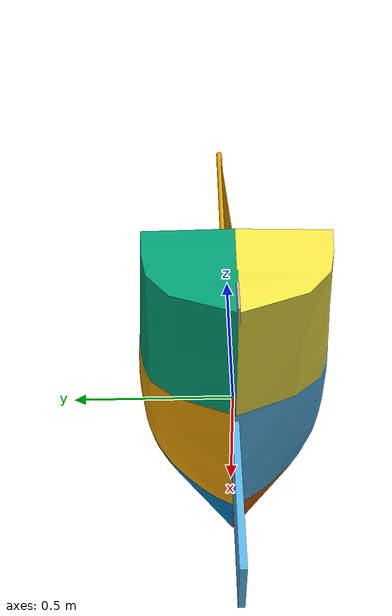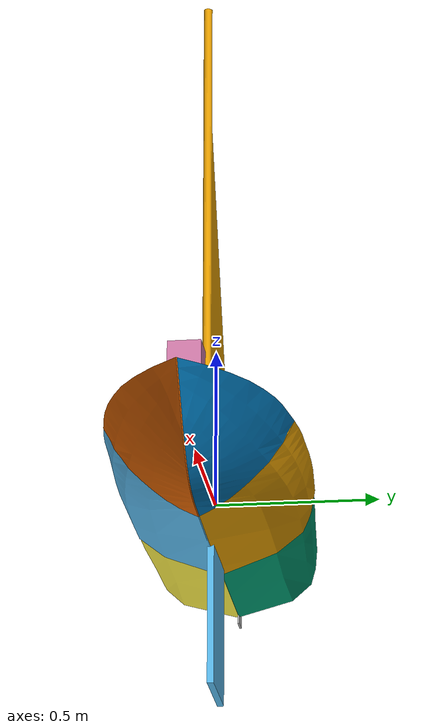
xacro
<?xml version="1.0"?>

<robot name="sailboat" xmlns:xacro="http://www.ros.org/wiki/xacro">

    <xacro:arg name="windType" default="global" />
    <xacro:arg name="waterType" default="global" />
    <xacro:property name="windType" value="$(arg windType)" />
    <xacro:property name="waterType" value="$(arg waterType)" />

    <xacro:property name="windType" value="global"/>
    <xacro:include filename="$(find usv_sim)/xacro/boat_subdivided4.xacro" />

    <xacro:rudder_xacro/>

    <!-- Defining sail model -->

    <link name="sail">
		<inertial>
		    	<origin rpy="0 0 0" xyz="-0.3 0 0.4"/>
			<mass value="1" />
			<inertia
			  ixx="0.4708"
			  ixy="0.0"
			  iyy="0.5208"
			  ixz="0.0"
			  iyz="0.0"
			  izz="0.0508"/>
		</inertial>

	    <collision name="collision">
            <geometry>
              <mesh filename="package://usv_sim/meshes/simpleHull3/sail.dae" scale="0.5 0.5 0.5"/>
            </geometry>
            <origin rpy="0 0 0" xyz="0 0 0"/>
	    </collision>

	    <visual name="visual">

            <geometry>

              <mesh filename="package://usv_sim/meshes/simpleHull3/sail.dae" scale="0.5 0.5 0.5"/>
            </geometry>
            <origin rpy="0 0 0" xyz="0 0 0"/>
	    </visual>
    </link>

    <joint name="sail_joint" type="revolute">
        <parent link="base_link"/>
        <child link="sail"/>
        <origin rpy="0 0 0" xyz="0.2 0 0.1"/>
        <dynamics damping="2.0"/>
        <axis xyz="0 0 1"/>
        <limit effort="1000000" velocity="700" lower="-${PI/2}" upper="${PI/2}" />
    </joint>

    <link name="keel">
	<inertial>
		<mass value="30" />
		<inertia
		  ixx="0.4708"
		  ixy="0.0"
		  iyy="0.5208"
		  ixz="0.0"
		  iyz="0.0"
		  izz="0.0508"/>
	</inertial>
	<collision name="collision">
		<geometry>
			<box size="0.25 0.02 0.5" />
		</geometry>
		<origin rpy="0 0 0" xyz="0 0 0"/>

	</collision>

	<visual name="visual">
		<geometry>
			<mesh filename="package://usv_sim/meshes/simpleHull3/box.dae" scale="0.25 0.02 0.5"/>
		</geometry>
		<origin rpy="0 0 0" xyz="0 0 0"/>
	</visual>
</link>

    <joint name="keel_joint" type="revolute">
        <parent link="base_link"/>
        <child link="keel"/>
        <origin rpy="0 0 0" xyz="0 0 -0.35"/>
        <dynamics damping="1.0"/>
        <axis xyz="0 0 1"/>
        <limit effort="30" velocity="5" lower="0" upper="0" />
    </joint>

    <!-- Plugin list -->
  <gazebo>

	<plugin name="usv_sail_plugin" filename="libfoil_dynamics_plugin.so">
		<link_type>sail</link_type>
		<link_name>sail</link_name>
		<joint_name>sail_joint</joint_name>
		<cla>8.0</cla>
		<cda>4.0</cda>
		<cp>0 0 0</cp>
		<area>1.44</area>
		<fluid_density>1.2041</fluid_density>
		<forward>1 0 0</forward>
		<upward>0 -1 0</upward>
		<fluidVelocity>${windType}</fluidVelocity>
      </plugin>

      <plugin name="usv_sail_plugin" filename="libfoil_dynamics_plugin.so">
		  <link_type>keel</link_type>
		  <link_name>keel</link_name>
		  <cla>8.0</cla>
		  <cda>4.0</cda>
		  <cp>0 0 0</cp>
		  <area>1.0</area>
		  <fluid_density>1000</fluid_density>
		  <forward>1 0 0</forward>
		  <upward>0 1 0</upward>
		  <fluidVelocity>${waterType}</fluidVelocity>
    </plugin>

    <plugin name="usv_sail_plugin" filename="libfoil_dynamics_plugin.so">
		<link_type>rudder</link_type>
		<link_name>rudder</link_name>
		<cla>1.5</cla>
		<cda>1.0</cda>
		<cp>0 0 0</cp>
		<area>1</area>
		<fluid_density>1000</fluid_density>
		<forward>1 0 0</forward>
		<upward>0 1 0</upward>
		<fluidVelocity>${waterType}</fluidVelocity>
      </plugin>

      <plugin name="freefloating_gazebo_control" filename="libfreefloating_gazebo_control.so">
          <switchService>switch</switchService>
          <updateRate>100</updateRate>
          <link>base_link</link>
      </plugin>

  </gazebo>

</robot>

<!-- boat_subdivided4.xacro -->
<xacro xmlns:xacro="http://www.ros.org/wiki/xacro">

    <xacro:property name="PI" value="3.1415926535897931"/>

    <!-- Body properties -->
    <xacro:property name="front_body_mass" value="5"/>
    <xacro:property name="back_body_mass" value="5"/>
    <xacro:property name="middle_body_mass" value="5"/>
    <xacro:property name="rear_body_mass" value="5"/>
    <xacro:property name="front_body_mass" value="2"/>
    <xacro:property name="back_water_displaced_mass" value="40"/>
    <xacro:property name="middle_water_displaced_mass" value="40"/>
    <xacro:property name="front_water_displaced_mass" value="25"/>
    <xacro:property name="scale" value="0.3"/>
    <xacro:property name="bl1" value=".1" />
    <xacro:property name="bl2" value=".1" />
    <xacro:arg name="windType" default="global" />
    <xacro:arg name="waterType" default="global" />
    <xacro:property name="windType" value="$(arg windType)" />
    <xacro:property name="waterType" value="$(arg waterType)" />

    <link name="base_link">
        <visual>
          <origin rpy="0 0 0" xyz="0 0 0"/>
          <geometry>
            <mesh filename="package://usv_sim/meshes/simpleHull3/base_link.dae" scale="${scale} ${scale} ${scale}"/>
          </geometry>
        </visual>
        <collision>
          <origin rpy="0 0 0" xyz="0 0 0"/>
          <geometry>
            <mesh filename="package://usv_sim/meshes/simpleHull3/base_link.dae" scale="${scale} ${scale} ${scale}"/>
          </geometry>
        </collision>

        <inertial>
            <origin rpy="0 0 0" xyz="${0.35*scale} ${0.44*scale} ${-0.2*scale}"/>
          <mass value="${middle_body_mass}"/>
          <inertia ixx="0.1" ixy="0.0" ixz="0.0" iyy="1.4" iyz="0.0" izz="1.4"/>
        </inertial>
        <buoyancy>
			<compensation>${middle_water_displaced_mass/middle_body_mass}</compensation>
			<origin xyz="${0.35*scale} ${0.44*scale} ${-0.15*scale}"/>
			<limit radius="0.1"/>
			<damping rpy="20 20 20" xyz="20 40 50"/>
         	<windVelocity>${windType}</windVelocity>
			<frontal_area>0.0</frontal_area>
			<lateral_area>0.06</lateral_area>
			<lateral_length>1.2</lateral_length>
	  		<waterVelocity>${waterType}</waterVelocity>
        </buoyancy>
    </link>

    <link name="center_r_link">
    	<visual>
          <origin rpy="0 0 0"  xyz="0 0 ${0*scale}"/>
          <geometry>
            <mesh filename="package://usv_sim/meshes/simpleHull3/centerRight.dae" scale="${scale} ${scale} ${scale}"/>
          </geometry>
        </visual>

        <collision>
          <origin rpy="0 0 0"  xyz="0 0 ${0*scale}"/>
          <geometry>
           	<mesh filename="package://usv_sim/meshes/simpleHull3/centerRight.dae" scale="${scale} ${scale} ${scale}"/>
          </geometry>
        </collision>

        <inertial>
            <origin rpy="0 0 0" xyz="${0.35*scale} ${-0.44*scale} ${-0.2*scale}"/>
          <mass value="${middle_body_mass}"/>
          <inertia ixx="0.1" ixy="0.0" ixz="0.0" iyy="1.4" iyz="0.0" izz="1.4"/>
        </inertial>
        <buoyancy>
          <compensation>${middle_water_displaced_mass/middle_body_mass}</compensation>
          <origin xyz="${0.35*scale} ${-0.44*scale} ${-0.15*scale}"/>
          <limit radius="0.1"/>
          <damping rpy="20 20 20" xyz="20 40 50"/>
			<windVelocity>${windType}</windVelocity>
			<frontal_area>0.0</frontal_area>
			<lateral_area>0.06</lateral_area>
			<lateral_length>1.2</lateral_length>
	  <waterVelocity>${waterType}</waterVelocity>
        </buoyancy>
    </link>

    <joint name="center_r_joint" type="revolute">
        <parent link="base_link"/>
        <child link="center_r_link"/>
        <origin rpy="0 0 0" xyz="0 0 0"/>
	<limit effort="50" velocity="5" lower="0" upper="0" />
            <dynamics damping="1.0"/>
            <axis xyz="1 0 0"/>
    </joint>

    <link name="back_l_link">
        <visual>
          <origin rpy="0 0 0"  xyz="0 0 0"/>
          <geometry>
           	<mesh filename="package://usv_sim/meshes/simpleHull3/backLeft.dae" scale="${scale} ${scale} ${scale}"/>
          </geometry>
        </visual>
        <collision>
          <origin rpy="0 0 0"  xyz="0 0 0"/>
          <geometry>
           	<mesh filename="package://usv_sim/meshes/simpleHull3/backLeft.dae" scale="${scale} ${scale} ${scale}"/>
          </geometry>
        </collision>

        <inertial>
            <origin rpy="0 0 0" xyz="${-0.6*scale} 0 ${-0.2*scale}"/>
          <mass value="${back_body_mass}"/>
          <inertia ixx="0.1" ixy="0.0" ixz="0.0" iyy="1.4" iyz="0.0" izz="1.4"/>
        </inertial>
        <buoyancy>
			<compensation>${back_water_displaced_mass/back_body_mass}</compensation>
			<origin xyz="${-0.6*scale} 0 ${-0.15*scale}"/>
			<limit radius="0.1"/>
			<damping rpy="20 20 20" xyz="20 40 50"/>
			<windVelocity>${windType}</windVelocity>
			<frontal_area>0.04</frontal_area>
			<lateral_area>0.06</lateral_area>
			<lateral_length>1.2</lateral_length>
	  		<waterVelocity>${waterType}</waterVelocity>
        </buoyancy>
    </link>

    <joint name="back_l_joint" type="revolute">
        <parent link="base_link"/>
        <child link="back_l_link"/>
        <origin rpy="0 0 0" xyz="${-0.5*scale} ${0.39*scale} 0"/>
	<limit effort="50" velocity="5" lower="0" upper="0" />
            <dynamics damping="1.0"/>
            <axis xyz="1 0 0"/>
    </joint>

    <link name="back_r_link">
    	<visual>
          <origin rpy="0 0 0"  xyz="0 0 0"/>
          <geometry>
           	<mesh filename="package://usv_sim/meshes/simpleHull3/backRight.dae" scale="${scale} ${scale} ${scale}"/>
          </geometry>
    	</visual>
        <collision>
          <origin rpy="0 0 0"  xyz="0 0 0"/>
          <geometry>
           	<mesh filename="package://usv_sim/meshes/simpleHull3/backRight.dae" scale="${scale} ${scale} ${scale}"/>
          </geometry>
        </collision>

        <inertial>
            <origin rpy="0 0 0" xyz="${-0.6*scale} 0 ${-0.2*scale}"/>
          <mass value="${back_body_mass}"/>
          <inertia ixx="0.1" ixy="0.0" ixz="0.0" iyy="1.4" iyz="0.0" izz="1.4"/>
        </inertial>
        <buoyancy>
          	<compensation>${back_water_displaced_mass/back_body_mass}</compensation>
          	<origin xyz="${-0.6*scale} 0 ${-0.15*scale}"/>
          	<limit radius="0.1"/>
          	<damping rpy="20 20 20" xyz="20 40 50"/>
          	<windVelocity>${windType}</windVelocity>
			<frontal_area>0.04</frontal_area>
			<lateral_area>0.06</lateral_area>
			<lateral_length>1.2</lateral_length>
	  		<waterVelocity>${waterType}</waterVelocity>
        </buoyancy>
    </link>

    <joint name="back_r_joint" type="revolute">
        <parent link="base_link"/>
        <child link="back_r_link"/>
        <origin rpy="0 0 0" xyz="${-0.5*scale} ${-0.39*scale} 0"/>
	<limit effort="50" velocity="5" lower="0" upper="0" />
            <dynamics damping="1.0"/>
            <axis xyz="1 0 0"/>
    </joint>

    <link name="front_l_link">
    	<visual>
    	<origin rpy="0 0 0"  xyz="0 0 0"/>
          <geometry>
           	<mesh filename="package://usv_sim/meshes/simpleHull3/frontLeft.dae" scale="${scale} ${scale} ${scale}"/>
          </geometry>
    	</visual>
        <collision>
          <origin rpy="0 0 0"  xyz="0 0 0"/>
          <geometry>
           	<mesh filename="package://usv_sim/meshes/simpleHull3/frontLeft.dae" scale="${scale} ${scale} ${scale}"/>
          </geometry>
        </collision>

        <inertial>
            <origin rpy="0 0 0" xyz="${0.4*scale} 0 ${-0.1*scale}"/>
          <mass value="${front_body_mass}"/>
          <inertia ixx="0.1" ixy="0.0" ixz="0.0" iyy="1.4" iyz="0.0" izz="1.4"/>
        </inertial>
        <buoyancy>
          	<compensation>${front_water_displaced_mass/front_body_mass}</compensation>
          	<origin xyz="${0.4*scale} 0 ${-0.05*scale}"/>
          	<limit radius="0.1"/>
          	<damping rpy="20 20 20" xyz="20 40 50"/>
          	<windVelocity>${windType}</windVelocity>
			<frontal_area>0.04</frontal_area>
			<lateral_area>0.06</lateral_area>
			<lateral_length>1.2</lateral_length>
	  		<waterVelocity>${waterType}</waterVelocity>
        </buoyancy>
    </link>

    <joint name="front_l_joint" type="revolute">
        <parent link="base_link"/>
        <child link="front_l_link"/>
        <origin rpy="0 0 0" xyz="${1.3*scale} ${0.2*scale} 0"/>
	<limit effort="50" velocity="5" lower="0" upper="0" />
            <dynamics damping="1.0"/>
            <axis xyz="1 0 0"/>
    </joint>

    <link name="front_r_link">
    	<visual>
    		<origin rpy="0 0 0"  xyz="0 0 0"/>
          <geometry>
           	<mesh filename="package://usv_sim/meshes/simpleHull3/frontRight.dae" scale="${scale} ${scale} ${scale}"/>
          </geometry>
        </visual>
        <collision>
          <origin rpy="0 0 0"  xyz="${0*scale} ${0*scale} 0"/>
          <geometry>
           	<mesh filename="package://usv_sim/meshes/simpleHull3/frontRight.dae" scale="${scale} ${scale} ${scale}"/>
          </geometry>
        </collision>

        <inertial>
            <origin rpy="0 0 0" xyz="${0.4*scale} 0 ${-0.1*scale}"/>
          <mass value="${front_body_mass}"/>
          <inertia ixx="0.1" ixy="0.0" ixz="0.0" iyy="1.4" iyz="0.0" izz="1.4"/>
        </inertial>
        <buoyancy>
          <compensation>${front_water_displaced_mass/front_body_mass}</compensation>
          <origin xyz="${0.4*scale} 0 ${-0.05*scale}"/>
          <limit radius="0.1"/>
          <damping rpy="20 20 20" xyz="20 40 50"/>
          <windVelocity>${windType}</windVelocity>
	  <waterVelocity>${waterType}</waterVelocity>
        </buoyancy>
    </link>

    <joint name="front_r_joint" type="revolute">
        <parent link="base_link"/>
        <child link="front_r_link"/>
        <origin rpy="0 0 0" xyz="${1.3*scale} ${-0.2*scale} 0"/>
	<limit effort="50" velocity="5" lower="0" upper="0" />
            <dynamics damping="1.0"/>
            <axis xyz="1 0 0"/>
    </joint>

    <!-- Thruster link -->
    <xacro:macro name="thruster_link" params="name xyz rpy rotationAxis effort:=50 velocity:=5 lowerLimit upperLimit parentLink:=back_r_link">
        <joint name="${name}_joint" type="revolute">
            <parent link="${parentLink}"/>
            <child link="${name}"/>
            <origin rpy="${rpy}" xyz="${xyz}"/>
            <dynamics damping="10.0"/>
            <axis xyz="${rotationAxis}"/>
            <limit effort="${effort}" velocity="${velocity}" lower="${lowerLimit}" upper="${upperLimit}" />
        </joint>

        <link name="${name}">
            <buoyancy>
				<compensation>0.8</compensation>
	        	<waterVelocity>${waterType}</waterVelocity>
	    	</buoyancy>
	    	<collision>
          		<origin xyz="${-0.15*scale} 0 ${0*scale}" rpy="0 0 0"/>
          		<geometry>
          		    <mesh filename="package://usv_sim/meshes/simpleHull3/thruster.dae" scale="${scale} ${scale} ${scale}"/>
          		</geometry>
        	</collision>

            <visual name="${name}">
                <origin xyz="${-0.15*scale} 0 ${0*scale}" rpy="0 0 0" />
                <geometry>
                    <mesh filename="package://usv_sim/meshes/simpleHull3/thruster.dae" scale="${scale} ${scale} ${scale}"/>
                </geometry>
                <material name="black">
                    <color rgba="255 255 255 1"/>
                </material>
            </visual>

            <inertial>
                <mass value="5"/>
                <origin xyz="${-0.2*scale} 0 ${0.3*scale}" rpy="0 0 0" />
                <inertia
                    ixx=".1"
                    ixy="0.0"
                    ixz="0.0"
                    iyy=".1"
                    iyz="0.0"
                    izz=".1"/>
            </inertial>
        </link>

        <gazebo reference="${name}">
            <material>Gazebo/Black</material>
        </gazebo>
    </xacro:macro>

    <xacro:macro name="thruster_dummy_link" params="name xyz rpy">
        <joint name="${name}" type="fixed">
            <parent link="base_link"/>
            <child link="${name}"/>
            <origin rpy="${rpy}" xyz="${xyz}"/>
        </joint>
        <link name="${name}"/>
    </xacro:macro>

    <!-- Thruster link -->
    <xacro:macro name="airthruster_link" params="name xyz rpy rotationAxis effort:=100 velocity:=20 lowerLimit upperLimit parentLink:=back_r_link">
        <joint name="${name}_joint" type="revolute">
            <parent link="${parentLink}"/>
            <child link="${name}"/>
            <origin rpy="${rpy}" xyz="${xyz}"/>
            <dynamics damping="10.0"/>
            <axis xyz="${rotationAxis}"/>
            <limit effort="${effort}" velocity="${velocity}" lower="${lowerLimit}" upper="${upperLimit}" />
        </joint>

        <link name="${name}">
            <buoyancy>
				<compensation>1.0</compensation>
	        	<waterVelocity>${waterType}</waterVelocity>
	    	</buoyancy>
	    	<collision>
          		<origin xyz="0 0 0" rpy="0 0 0"/>
          		<geometry>
          			<box size="${bl1} ${bl1} ${bl2}" />
          		</geometry>
        	</collision>

            <visual name="${name}">
                <origin xyz="0 0 0" rpy="0 0 0" />
                <geometry>
                    	<mesh filename="package://usv_sim/meshes/simpleHull3/airPropeller.dae" scale="${scale} ${scale} ${scale}"/>
                </geometry>
            </visual>

            <inertial>
                <mass value=".1"/>
                <inertia
                    ixx=".1"
                    ixy="0.0"
                    ixz="0.0"
                    iyy=".1"
                    iyz="0.0"
                    izz=".1"/>
            </inertial>
        </link>

        <gazebo reference="${name}">
            <material>Gazebo/Black</material>
        </gazebo>
    </xacro:macro>

    <xacro:macro name="thruster_dummy_link" params="name xyz rpy">
        <joint name="${name}" type="fixed">
            <parent link="base_link"/>
            <child link="${name}"/>
            <origin rpy="${rpy}" xyz="${xyz}"/>
        </joint>
        <link name="${name}"/>
    </xacro:macro>

    <!-- Rudder link -->
    <xacro:macro name="rudder_xacro">
        <link name="rudder">
            <inertial>
                <mass value="1" />
                <inertia
                  ixx="0.05"
                  ixy="0.0"
                  iyy="0.05"
                  ixz="0.0"
                  iyz="0.0"
                  izz="0.005"/>
            </inertial>

            <collision name="collision">
                <geometry>
                  <box size="${0.2*scale} ${0.02*scale} ${0.3*scale}" />
                </geometry>
                <origin rpy="0 0 0" xyz="${-0.1*scale} 0 0"/>
            </collision>

            <visual name="visual">
                <geometry>

                  <mesh filename="package://usv_sim/meshes/simpleHull3/box.dae" scale="${0.2*scale} ${0.02*scale} ${0.3*scale}"/>

                </geometry>
                <origin rpy="0 0 0" xyz="${-0.1*scale} 0 0"/>

            </visual>

        </link>

        <joint name="rudder_joint" type="revolute">
            <parent link="back_r_link"/>
            <child link="rudder"/>
            <origin rpy="0 0 0" xyz="${-1.4*scale} ${0.39*scale} ${-0.5*scale}"/>
            <dynamics damping="1.0"/>
            <axis xyz="0 0 1"/>
            <limit effort="100" velocity="5" lower="-${PI/2}" upper="${PI/2}" />
        </joint>
    </xacro:macro>

    <!-- Sensors -->

    <!-- Hokuyo Laser -->
    <joint name="hokuyo_joint" type="fixed">
        <axis xyz="0 1 0" />
        <origin xyz="0.7 0 0.2" rpy="0 0 0"/>
        <parent link="base_link"/>
        <child link="hokuyo_link"/>
    </joint>

    <link name="hokuyo_link">
        <collision name="collision">
	        <origin xyz="0 0 0" rpy="0 0 0"/>
	        <geometry>
	        	<box size="0.1 0.1 0.1"/>
	        </geometry>
        </collision>

        <visual name="visual">
        	<origin xyz="0 0 0" rpy="0 0 0"/>
        	<geometry>
        		<mesh filename="package://usv_sim/meshes/simpleHull3/box.dae" scale="0.1 0.1 0.1"/>

        	</geometry>

        </visual>

        <inertial>
        <mass value="1e-5" />
        <origin xyz="0 0 0" rpy="0 0 0"/>
        <inertia ixx="1e-6" ixy="0" ixz="0" iyy="1e-6" iyz="0" izz="1e-6" />
        </inertial>
    </link>

    <gazebo reference="hokuyo_link">
        <sensor type="gpu_ray" name="head_hokuyo_sensor">
        <pose>0 0 0 0 0 0</pose>
        <visualize>false</visualize>
        <update_rate>40</update_rate>
        <ray>
        <scan>
        <horizontal>
        <samples>720</samples>
        <resolution>1</resolution>
        <min_angle>-1.570796</min_angle>
        <max_angle>1.570796</max_angle>
        </horizontal>
        </scan>
        <range>
        <min>0.10</min>
        <max>30.0</max>
        <resolution>0.01</resolution>
        </range>
        <noise>
        <type>gaussian</type>
        <mean>0.0</mean>
        <stddev>0.01</stddev>
        </noise>
        </ray>
        <plugin name="gazebo_ros_head_hokuyo_controller" filename="libgazebo_ros_gpu_laser.so">
        <topicName>scan</topicName>
        <frameName>base_laser</frameName>
        </plugin>
        </sensor>
    </gazebo>

</xacro>
